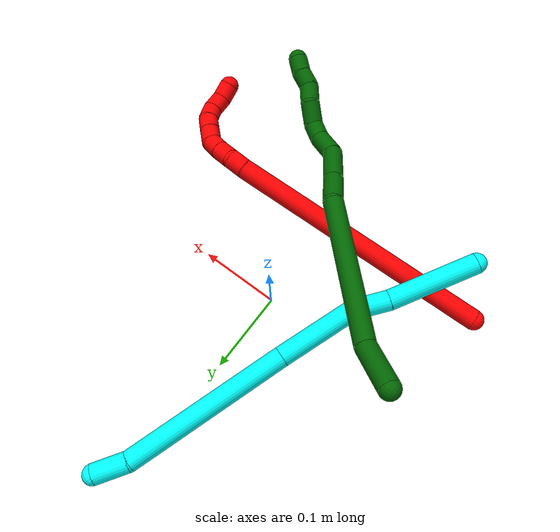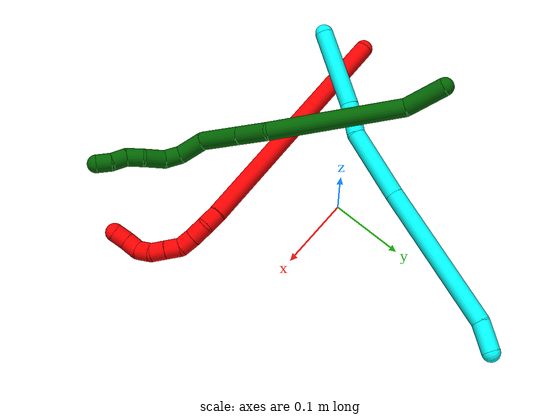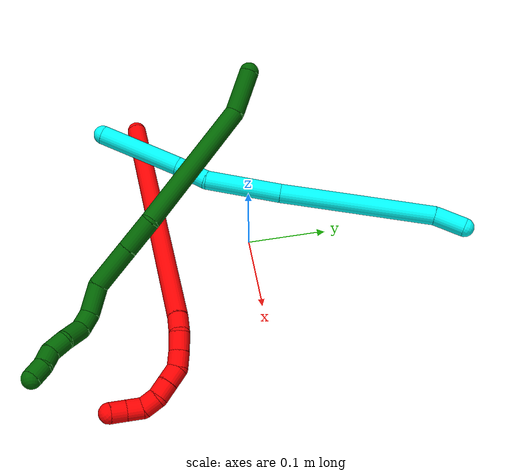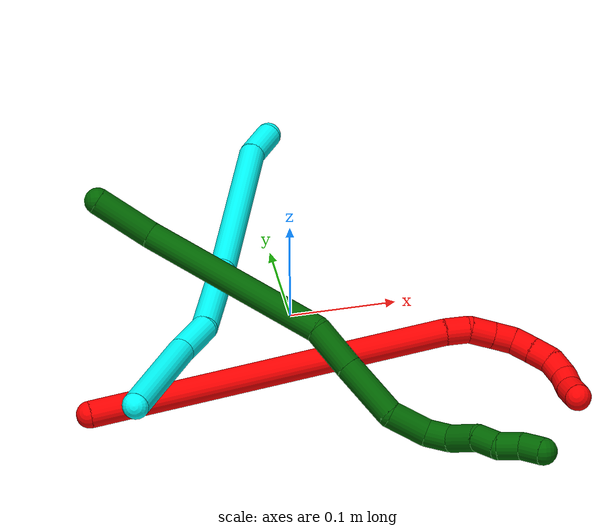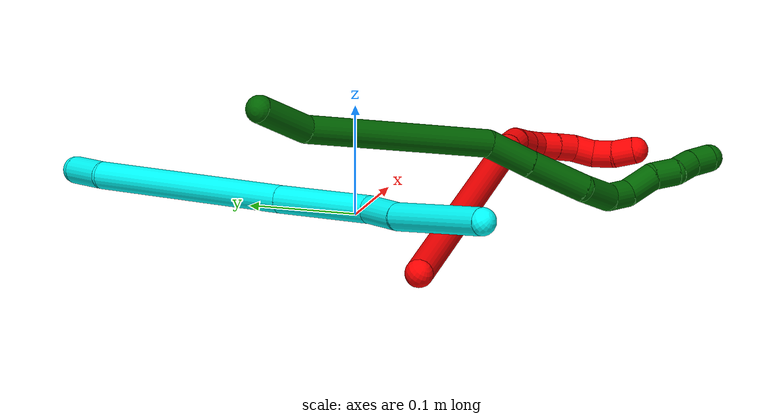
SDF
<sdf version="1.7">
 <world name="default">
  <model name="photoneo_s_sensor">
   <static>1</static>
   <pose>0 0 2 1.57079 1.57079 3.14159</pose>
   <link name="link">
    <inertial><mass>0.1</mass></inertial>
    <sensor name="sensor" type="depth">
     <update_rate>30</update_rate>
     <camera>
      <horizontal_fov>1.22</horizontal_fov>
      <image><width>1920</width><height>1200</height><format>B8G8R8</format></image>
      <clip><near>0.1</near><far>4</far></clip>
      <depth_camera><output>points</output></depth_camera>
     </camera>
     <plugin name="camera_plugin" filename="libgazebo_ros_depth_camera.so">
      <baseline>0.2</baseline>
      <alwaysOn>1</alwaysOn>
      <updateRate>0.0</updateRate>
      <cameraName>camera_ir</cameraName>
      <imageTopicName>/camera/color/image_raw</imageTopicName>
      <cameraInfoTopicName>/camera/color/camera_info</cameraInfoTopicName>
      <depthImageTopicName>/camera/depth/image_raw</depthImageTopicName>
      <depthImageCameraInfoTopicName>/camera/depth/camera_info</depthImageCameraInfoTopicName>
      <pointCloudTopicName>/camera/depth/points</pointCloudTopicName>
      <frameName>fr_optical</frameName>
      <pointCloudCutoff>0.1</pointCloudCutoff>
      <pointCloudCutoffMax>2.0</pointCloudCutoffMax>
      <distortionK1>0</distortionK1>
      <distortionK2>0</distortionK2>
      <distortionK3>0</distortionK3>
      <distortionT1>0</distortionT1>
      <distortionT2>0</distortionT2>
      <CxPrime>0</CxPrime>
      <Cx>0</Cx>
      <Cy>0</Cy>
      <focalLength>0</focalLength>
      <hackBaseline>0</hackBaseline>
     </plugin>
    </sensor>
   </link>
  </model>
  <model name="bin">
   <static>1</static>
   <link name="bottom">
    <collision name="collision-bottom">
     <pose>0 0 -0.01 0 -0 0</pose>
     <geometry><box><size>0.8 0.6 0.02</size></box></geometry>
     <surface>
      <friction><ode><mu>100</mu><mu2>100</mu2></ode></friction>
      <contact><collide_bitmask>65535</collide_bitmask></contact>
     </surface>
    </collision>
   </link>
   <link name="west_wall">
    <collision name="collision-west_wall">
     <pose>-0.41 0 0.1 0 -0 0</pose>
     <geometry><box><size>0.02 0.6 0.2</size></box></geometry>
     <surface>
      <friction><ode><mu>100</mu><mu2>100</mu2></ode></friction>
      <contact><collide_bitmask>65535</collide_bitmask></contact>
     </surface>
    </collision>
   </link>
   <link name="east_wall">
    <collision name="collision-east_wall">
     <pose>0.41 0 0.1 0 -0 0</pose>
     <geometry><box><size>0.02 0.6 0.2</size></box></geometry>
     <surface>
      <friction><ode><mu>100</mu><mu2>100</mu2></ode></friction>
      <contact><collide_bitmask>65535</collide_bitmask></contact>
     </surface>
    </collision>
   </link>
   <link name="south_wall">
    <collision name="collision-south_wall">
     <pose>0 -0.31 0.1 0 -0 0</pose>
     <geometry><box><size>0.8 0.02 0.2</size></box></geometry>
     <surface>
      <friction><ode><mu>100</mu><mu2>100</mu2></ode></friction>
      <contact><collide_bitmask>65535</collide_bitmask></contact>
     </surface>
    </collision>
   </link>
   <link name="north_wall">
    <collision name="collision-north_wall">
     <pose>0 0.31 0.1 0 -0 0</pose>
     <geometry><box><size>0.8 0.02 0.2</size></box></geometry>
     <surface>
      <friction><ode><mu>100</mu><mu2>100</mu2></ode></friction>
      <contact><collide_bitmask>65535</collide_bitmask></contact>
     </surface>
    </collision>
   </link>
  </model>
  <model name="2">
   <static>0</static>
   <link name="2">
    <collision name="collision-cylinder-e_1_1_4">
     <pose>0.160064 0.027199 -0.039667 -2.54054 1.2789 -2.35192</pose>
     <geometry><cylinder><radius>0.0125</radius><length>0.334267</length></cylinder></geometry>
     <surface>
      <friction><ode><mu>1.16</mu><mu2>1.16</mu2><slip1>0</slip1><slip2>0</slip2></ode></friction>
      <contact><ode><kp>1e+06</kp><kd>1</kd><max_vel>0</max_vel><min_depth>0.001</min_depth></ode></contact>
     </surface>
    </collision>
    <visual name="visual-cylinder-e_1_1_4">
     <pose>0.160064 0.027199 -0.039667 -2.54054 1.2789 -2.35192</pose>
     <geometry><cylinder><radius>0.0125</radius><length>0.334267</length></cylinder></geometry>
     <material><ambient>1 0 0 1</ambient></material>
    </visual>
    <collision name="collision-cylinder-e_2_4_5">
     <pose>0.330928 0.054907 -0.081994 -2.95249 1.32513 -2.89969</pose>
     <geometry><cylinder><radius>0.0125</radius><length>0.022271</length></cylinder></geometry>
     <surface>
      <friction><ode><mu>1.16</mu><mu2>1.16</mu2><slip1>0</slip1><slip2>0</slip2></ode></friction>
      <contact><ode><kp>1e+06</kp><kd>1</kd><max_vel>0</max_vel><min_depth>0.001</min_depth></ode></contact>
     </surface>
    </collision>
    <visual name="visual-cylinder-e_2_4_5">
     <pose>0.330928 0.054907 -0.081994 -2.95249 1.32513 -2.89969</pose>
     <geometry><cylinder><radius>0.0125</radius><length>0.022271</length></cylinder></geometry>
     <material><ambient>1 0 0 1</ambient></material>
    </visual>
    <collision name="collision-cylinder-e_3_5_6">
     <pose>0.351776 0.052471 -0.089406 2.58684 1.06302 2.23964</pose>
     <geometry><cylinder><radius>0.0125</radius><length>0.022994</length></cylinder></geometry>
     <surface>
      <friction><ode><mu>1.16</mu><mu2>1.16</mu2><slip1>0</slip1><slip2>0</slip2></ode></friction>
      <contact><ode><kp>1e+06</kp><kd>1</kd><max_vel>0</max_vel><min_depth>0.001</min_depth></ode></contact>
     </surface>
    </collision>
    <visual name="visual-cylinder-e_3_5_6">
     <pose>0.351776 0.052471 -0.089406 2.58684 1.06302 2.23964</pose>
     <geometry><cylinder><radius>0.0125</radius><length>0.022994</length></cylinder></geometry>
     <material><ambient>1 0 0 1</ambient></material>
    </visual>
    <collision name="collision-cylinder-e_4_6_7">
     <pose>0.370817 0.046605 -0.097511 2.42489 1.11162 2.05639</pose>
     <geometry><cylinder><radius>0.0125</radius><length>0.020069</length></cylinder></geometry>
     <surface>
      <friction><ode><mu>1.16</mu><mu2>1.16</mu2><slip1>0</slip1><slip2>0</slip2></ode></friction>
      <contact><ode><kp>1e+06</kp><kd>1</kd><max_vel>0</max_vel><min_depth>0.001</min_depth></ode></contact>
     </surface>
    </collision>
    <visual name="visual-cylinder-e_4_6_7">
     <pose>0.370817 0.046605 -0.097511 2.42489 1.11162 2.05639</pose>
     <geometry><cylinder><radius>0.0125</radius><length>0.020069</length></cylinder></geometry>
     <material><ambient>1 0 0 1</ambient></material>
    </visual>
    <collision name="collision-cylinder-e_5_7_8">
     <pose>0.388065 0.037784 -0.100328 1.48013 0.948215 0.876437</pose>
     <geometry><cylinder><radius>0.0125</radius><length>0.020316</length></cylinder></geometry>
     <surface>
      <friction><ode><mu>1.16</mu><mu2>1.16</mu2><slip1>0</slip1><slip2>0</slip2></ode></friction>
      <contact><ode><kp>1e+06</kp><kd>1</kd><max_vel>0</max_vel><min_depth>0.001</min_depth></ode></contact>
     </surface>
    </collision>
    <visual name="visual-cylinder-e_5_7_8">
     <pose>0.388065 0.037784 -0.100328 1.48013 0.948215 0.876437</pose>
     <geometry><cylinder><radius>0.0125</radius><length>0.020316</length></cylinder></geometry>
     <material><ambient>1 0 0 1</ambient></material>
    </visual>
    <collision name="collision-cylinder-e_6_8_9">
     <pose>0.404332 0.025901 -0.099403 1.50596 0.928423 0.87749</pose>
     <geometry><cylinder><radius>0.0125</radius><length>0.020021</length></cylinder></geometry>
     <surface>
      <friction><ode><mu>1.16</mu><mu2>1.16</mu2><slip1>0</slip1><slip2>0</slip2></ode></friction>
      <contact><ode><kp>1e+06</kp><kd>1</kd><max_vel>0</max_vel><min_depth>0.001</min_depth></ode></contact>
     </surface>
    </collision>
    <visual name="visual-cylinder-e_6_8_9">
     <pose>0.404332 0.025901 -0.099403 1.50596 0.928423 0.87749</pose>
     <geometry><cylinder><radius>0.0125</radius><length>0.020021</length></cylinder></geometry>
     <material><ambient>1 0 0 1</ambient></material>
    </visual>
    <collision name="collision-cylinder-e_7_9_10">
     <pose>0.417463 0.011496 -0.097259 1.36526 0.536609 0.439823</pose>
     <geometry><cylinder><radius>0.0125</radius><length>0.020015</length></cylinder></geometry>
     <surface>
      <friction><ode><mu>1.16</mu><mu2>1.16</mu2><slip1>0</slip1><slip2>0</slip2></ode></friction>
      <contact><ode><kp>1e+06</kp><kd>1</kd><max_vel>0</max_vel><min_depth>0.001</min_depth></ode></contact>
     </surface>
    </collision>
    <visual name="visual-cylinder-e_7_9_10">
     <pose>0.417463 0.011496 -0.097259 1.36526 0.536609 0.439823</pose>
     <geometry><cylinder><radius>0.0125</radius><length>0.020015</length></cylinder></geometry>
     <material><ambient>1 0 0 1</ambient></material>
    </visual>
    <collision name="collision-cylinder-e_8_10_11">
     <pose>0.425026 -0.00452 -0.089448 0.897745 0.246744 0.119313</pose>
     <geometry><cylinder><radius>0.0125</radius><length>0.020035</length></cylinder></geometry>
     <surface>
      <friction><ode><mu>1.16</mu><mu2>1.16</mu2><slip1>0</slip1><slip2>0</slip2></ode></friction>
      <contact><ode><kp>1e+06</kp><kd>1</kd><max_vel>0</max_vel><min_depth>0.001</min_depth></ode></contact>
     </surface>
    </collision>
    <visual name="visual-cylinder-e_8_10_11">
     <pose>0.425026 -0.00452 -0.089448 0.897745 0.246744 0.119313</pose>
     <geometry><cylinder><radius>0.0125</radius><length>0.020035</length></cylinder></geometry>
     <material><ambient>1 0 0 1</ambient></material>
    </visual>
    <collision name="collision-cylinder-e_9_11_2">
     <pose>0.431206 -0.018155 -0.076342 0.708285 0.382293 0.142849</pose>
     <geometry><cylinder><radius>0.0125</radius><length>0.020011</length></cylinder></geometry>
     <surface>
      <friction><ode><mu>1.16</mu><mu2>1.16</mu2><slip1>0</slip1><slip2>0</slip2></ode></friction>
      <contact><ode><kp>1e+06</kp><kd>1</kd><max_vel>0</max_vel><min_depth>0.001</min_depth></ode></contact>
     </surface>
    </collision>
    <visual name="visual-cylinder-e_9_11_2">
     <pose>0.431206 -0.018155 -0.076342 0.708285 0.382293 0.142849</pose>
     <geometry><cylinder><radius>0.0125</radius><length>0.020011</length></cylinder></geometry>
     <material><ambient>1 0 0 1</ambient></material>
    </visual>
    <collision name="collision-sphere-2">
     <pose>0.434938 -0.024194 -0.069291 0 -0 0</pose>
     <geometry><sphere><radius>0.0125</radius></sphere></geometry>
     <surface>
      <friction><ode><mu>1.16</mu><mu2>1.16</mu2><slip1>0</slip1><slip2>0</slip2></ode></friction>
      <contact><ode><kp>1e+06</kp><kd>1</kd><max_vel>0</max_vel><min_depth>0.001</min_depth></ode></contact>
     </surface>
    </collision>
    <visual name="visual-sphere-2">
     <pose>0.434938 -0.024194 -0.069291 0 -0 0</pose>
     <geometry><sphere><radius>0.0125</radius></sphere></geometry>
     <material><ambient>1 0 0 1</ambient></material>
    </visual>
    <collision name="collision-sphere-11">
     <pose>0.427473 -0.012116 -0.083392 0 -0 0</pose>
     <geometry><sphere><radius>0.0125</radius></sphere></geometry>
     <surface>
      <friction><ode><mu>1.16</mu><mu2>1.16</mu2><slip1>0</slip1><slip2>0</slip2></ode></friction>
      <contact><ode><kp>1e+06</kp><kd>1</kd><max_vel>0</max_vel><min_depth>0.001</min_depth></ode></contact>
     </surface>
    </collision>
    <visual name="visual-sphere-11">
     <pose>0.427473 -0.012116 -0.083392 0 -0 0</pose>
     <geometry><sphere><radius>0.0125</radius></sphere></geometry>
     <material><ambient>1 0 0 1</ambient></material>
    </visual>
    <collision name="collision-sphere-10">
     <pose>0.422579 0.003076 -0.095504 0 -0 0</pose>
     <geometry><sphere><radius>0.0125</radius></sphere></geometry>
     <surface>
      <friction><ode><mu>1.16</mu><mu2>1.16</mu2><slip1>0</slip1><slip2>0</slip2></ode></friction>
      <contact><ode><kp>1e+06</kp><kd>1</kd><max_vel>0</max_vel><min_depth>0.001</min_depth></ode></contact>
     </surface>
    </collision>
    <visual name="visual-sphere-10">
     <pose>0.422579 0.003076 -0.095504 0 -0 0</pose>
     <geometry><sphere><radius>0.0125</radius></sphere></geometry>
     <material><ambient>1 0 0 1</ambient></material>
    </visual>
    <collision name="collision-sphere-9">
     <pose>0.412347 0.019916 -0.099014 0 -0 0</pose>
     <geometry><sphere><radius>0.0125</radius></sphere></geometry>
     <surface>
      <friction><ode><mu>1.16</mu><mu2>1.16</mu2><slip1>0</slip1><slip2>0</slip2></ode></friction>
      <contact><ode><kp>1e+06</kp><kd>1</kd><max_vel>0</max_vel><min_depth>0.001</min_depth></ode></contact>
     </surface>
    </collision>
    <visual name="visual-sphere-9">
     <pose>0.412347 0.019916 -0.099014 0 -0 0</pose>
     <geometry><sphere><radius>0.0125</radius></sphere></geometry>
     <material><ambient>1 0 0 1</ambient></material>
    </visual>
    <collision name="collision-sphere-4">
     <pose>0.320127 0.054398 -0.079334 0 -0 0</pose>
     <geometry><sphere><radius>0.0125</radius></sphere></geometry>
     <surface>
      <friction><ode><mu>1.16</mu><mu2>1.16</mu2><slip1>0</slip1><slip2>0</slip2></ode></friction>
      <contact><ode><kp>1e+06</kp><kd>1</kd><max_vel>0</max_vel><min_depth>0.001</min_depth></ode></contact>
     </surface>
    </collision>
    <visual name="visual-sphere-4">
     <pose>0.320127 0.054398 -0.079334 0 -0 0</pose>
     <geometry><sphere><radius>0.0125</radius></sphere></geometry>
     <material><ambient>1 0 0 1</ambient></material>
    </visual>
    <collision name="collision-sphere-1">
     <geometry><sphere><radius>0.0125</radius></sphere></geometry>
     <surface>
      <friction><ode><mu>1.16</mu><mu2>1.16</mu2><slip1>0</slip1><slip2>0</slip2></ode></friction>
      <contact><ode><kp>1e+06</kp><kd>1</kd><max_vel>0</max_vel><min_depth>0.001</min_depth></ode></contact>
     </surface>
    </collision>
    <visual name="visual-sphere-1">
     <geometry><sphere><radius>0.0125</radius></sphere></geometry>
     <material><ambient>1 0 0 1</ambient></material>
    </visual>
    <collision name="collision-sphere-8">
     <pose>0.396317 0.031885 -0.099791 0 -0 0</pose>
     <geometry><sphere><radius>0.0125</radius></sphere></geometry>
     <surface>
      <friction><ode><mu>1.16</mu><mu2>1.16</mu2><slip1>0</slip1><slip2>0</slip2></ode></friction>
      <contact><ode><kp>1e+06</kp><kd>1</kd><max_vel>0</max_vel><min_depth>0.001</min_depth></ode></contact>
     </surface>
    </collision>
    <visual name="visual-sphere-8">
     <pose>0.396317 0.031885 -0.099791 0 -0 0</pose>
     <geometry><sphere><radius>0.0125</radius></sphere></geometry>
     <material><ambient>1 0 0 1</ambient></material>
    </visual>
    <collision name="collision-sphere-5">
     <pose>0.34173 0.055416 -0.084654 0 -0 0</pose>
     <geometry><sphere><radius>0.0125</radius></sphere></geometry>
     <surface>
      <friction><ode><mu>1.16</mu><mu2>1.16</mu2><slip1>0</slip1><slip2>0</slip2></ode></friction>
      <contact><ode><kp>1e+06</kp><kd>1</kd><max_vel>0</max_vel><min_depth>0.001</min_depth></ode></contact>
     </surface>
    </collision>
    <visual name="visual-sphere-5">
     <pose>0.34173 0.055416 -0.084654 0 -0 0</pose>
     <geometry><sphere><radius>0.0125</radius></sphere></geometry>
     <material><ambient>1 0 0 1</ambient></material>
    </visual>
    <collision name="collision-sphere-6">
     <pose>0.361822 0.049527 -0.094158 0 -0 0</pose>
     <geometry><sphere><radius>0.0125</radius></sphere></geometry>
     <surface>
      <friction><ode><mu>1.16</mu><mu2>1.16</mu2><slip1>0</slip1><slip2>0</slip2></ode></friction>
      <contact><ode><kp>1e+06</kp><kd>1</kd><max_vel>0</max_vel><min_depth>0.001</min_depth></ode></contact>
     </surface>
    </collision>
    <visual name="visual-sphere-6">
     <pose>0.361822 0.049527 -0.094158 0 -0 0</pose>
     <geometry><sphere><radius>0.0125</radius></sphere></geometry>
     <material><ambient>1 0 0 1</ambient></material>
    </visual>
    <collision name="collision-sphere-7">
     <pose>0.379813 0.043684 -0.100864 0 -0 0</pose>
     <geometry><sphere><radius>0.0125</radius></sphere></geometry>
     <surface>
      <friction><ode><mu>1.16</mu><mu2>1.16</mu2><slip1>0</slip1><slip2>0</slip2></ode></friction>
      <contact><ode><kp>1e+06</kp><kd>1</kd><max_vel>0</max_vel><min_depth>0.001</min_depth></ode></contact>
     </surface>
    </collision>
    <visual name="visual-sphere-7">
     <pose>0.379813 0.043684 -0.100864 0 -0 0</pose>
     <geometry><sphere><radius>0.0125</radius></sphere></geometry>
     <material><ambient>1 0 0 1</ambient></material>
    </visual>
    <inertial>
     <pose>0.235768 0.027037 -0.056786 0 -0 0</pose>
     <mass>0.5</mass>
     <inertia>
      <ixx>-0.001231</ixx>
      <ixy>0</ixy>
      <ixz>0</ixz>
      <iyy>0.002389</iyy>
      <iyz>0</iyz>
      <izz>-0.00351</izz>
     </inertia>
    </inertial>
   </link>
   <pose>-0.209514 -0.123667 0.011495 0.675122 -0.1768 -0.228906</pose>
  </model>
  <model name="3">
   <static>0</static>
   <link name="3">
    <collision name="collision-cylinder-e_1_1_4">
     <pose>0.001281 0.025394 0.048931 -0.478716 0.023225 -0.005668</pose>
     <geometry><cylinder><radius>0.0125</radius><length>0.110286</length></cylinder></geometry>
     <surface>
      <friction><ode><mu>1.16</mu><mu2>1.16</mu2><slip1>0</slip1><slip2>0</slip2></ode></friction>
      <contact><ode><kp>1e+06</kp><kd>1</kd><max_vel>0</max_vel><min_depth>0.001</min_depth></ode></contact>
     </surface>
    </collision>
    <visual name="visual-cylinder-e_1_1_4">
     <pose>0.001281 0.025394 0.048931 -0.478716 0.023225 -0.005668</pose>
     <geometry><cylinder><radius>0.0125</radius><length>0.110286</length></cylinder></geometry>
     <material><ambient>0.003922 1 0.996078 1</ambient></material>
    </visual>
    <collision name="collision-cylinder-e_2_4_5">
     <pose>0.001535 0.063502 0.115909 -0.613726 -0.046438 0.014717</pose>
     <geometry><cylinder><radius>0.0125</radius><length>0.044199</length></cylinder></geometry>
     <surface>
      <friction><ode><mu>1.16</mu><mu2>1.16</mu2><slip1>0</slip1><slip2>0</slip2></ode></friction>
      <contact><ode><kp>1e+06</kp><kd>1</kd><max_vel>0</max_vel><min_depth>0.001</min_depth></ode></contact>
     </surface>
    </collision>
    <visual name="visual-cylinder-e_2_4_5">
     <pose>0.001535 0.063502 0.115909 -0.613726 -0.046438 0.014717</pose>
     <geometry><cylinder><radius>0.0125</radius><length>0.044199</length></cylinder></geometry>
     <material><ambient>0.003922 1 0.996078 1</ambient></material>
    </visual>
    <collision name="collision-cylinder-e_3_5_6">
     <pose>0.012571 0.097714 0.177426 -0.459284 0.243779 -0.057255</pose>
     <geometry><cylinder><radius>0.0125</radius><length>0.099946</length></cylinder></geometry>
     <surface>
      <friction><ode><mu>1.16</mu><mu2>1.16</mu2><slip1>0</slip1><slip2>0</slip2></ode></friction>
      <contact><ode><kp>1e+06</kp><kd>1</kd><max_vel>0</max_vel><min_depth>0.001</min_depth></ode></contact>
     </surface>
    </collision>
    <visual name="visual-cylinder-e_3_5_6">
     <pose>0.012571 0.097714 0.177426 -0.459284 0.243779 -0.057255</pose>
     <geometry><cylinder><radius>0.0125</radius><length>0.099946</length></cylinder></geometry>
     <material><ambient>0.003922 1 0.996078 1</ambient></material>
    </visual>
    <collision name="collision-cylinder-e_4_6_7">
     <pose>0.052576 0.163453 0.308596 -0.467201 0.277147 -0.066347</pose>
     <geometry><cylinder><radius>0.0125</radius><length>0.204247</length></cylinder></geometry>
     <surface>
      <friction><ode><mu>1.16</mu><mu2>1.16</mu2><slip1>0</slip1><slip2>0</slip2></ode></friction>
      <contact><ode><kp>1e+06</kp><kd>1</kd><max_vel>0</max_vel><min_depth>0.001</min_depth></ode></contact>
     </surface>
    </collision>
    <visual name="visual-cylinder-e_4_6_7">
     <pose>0.052576 0.163453 0.308596 -0.467201 0.277147 -0.066347</pose>
     <geometry><cylinder><radius>0.0125</radius><length>0.204247</length></cylinder></geometry>
     <material><ambient>0.003922 1 0.996078 1</ambient></material>
    </visual>
    <collision name="collision-cylinder-e_5_7_2">
     <pose>0.081054 0.218838 0.413684 -0.569989 0.025924 -0.007595</pose>
     <geometry><cylinder><radius>0.0125</radius><length>0.041321</length></cylinder></geometry>
     <surface>
      <friction><ode><mu>1.16</mu><mu2>1.16</mu2><slip1>0</slip1><slip2>0</slip2></ode></friction>
      <contact><ode><kp>1e+06</kp><kd>1</kd><max_vel>0</max_vel><min_depth>0.001</min_depth></ode></contact>
     </surface>
    </collision>
    <visual name="visual-cylinder-e_5_7_2">
     <pose>0.081054 0.218838 0.413684 -0.569989 0.025924 -0.007595</pose>
     <geometry><cylinder><radius>0.0125</radius><length>0.041321</length></cylinder></geometry>
     <material><ambient>0.003922 1 0.996078 1</ambient></material>
    </visual>
    <collision name="collision-sphere-2">
     <pose>0.081589 0.229984 0.431073 0 -0 0</pose>
     <geometry><sphere><radius>0.0125</radius></sphere></geometry>
     <surface>
      <friction><ode><mu>1.16</mu><mu2>1.16</mu2><slip1>0</slip1><slip2>0</slip2></ode></friction>
      <contact><ode><kp>1e+06</kp><kd>1</kd><max_vel>0</max_vel><min_depth>0.001</min_depth></ode></contact>
     </surface>
    </collision>
    <visual name="visual-sphere-2">
     <pose>0.081589 0.229984 0.431073 0 -0 0</pose>
     <geometry><sphere><radius>0.0125</radius></sphere></geometry>
     <material><ambient>0.003922 1 0.996078 1</ambient></material>
    </visual>
    <collision name="collision-sphere-7">
     <pose>0.080518 0.207693 0.396296 0 -0 0</pose>
     <geometry><sphere><radius>0.0125</radius></sphere></geometry>
     <surface>
      <friction><ode><mu>1.16</mu><mu2>1.16</mu2><slip1>0</slip1><slip2>0</slip2></ode></friction>
      <contact><ode><kp>1e+06</kp><kd>1</kd><max_vel>0</max_vel><min_depth>0.001</min_depth></ode></contact>
     </surface>
    </collision>
    <visual name="visual-sphere-7">
     <pose>0.080518 0.207693 0.396296 0 -0 0</pose>
     <geometry><sphere><radius>0.0125</radius></sphere></geometry>
     <material><ambient>0.003922 1 0.996078 1</ambient></material>
    </visual>
    <collision name="collision-sphere-6">
     <pose>0.024633 0.119213 0.220896 0 -0 0</pose>
     <geometry><sphere><radius>0.0125</radius></sphere></geometry>
     <surface>
      <friction><ode><mu>1.16</mu><mu2>1.16</mu2><slip1>0</slip1><slip2>0</slip2></ode></friction>
      <contact><ode><kp>1e+06</kp><kd>1</kd><max_vel>0</max_vel><min_depth>0.001</min_depth></ode></contact>
     </surface>
    </collision>
    <visual name="visual-sphere-6">
     <pose>0.024633 0.119213 0.220896 0 -0 0</pose>
     <geometry><sphere><radius>0.0125</radius></sphere></geometry>
     <material><ambient>0.003922 1 0.996078 1</ambient></material>
    </visual>
    <collision name="collision-sphere-5">
     <pose>0.000509 0.076216 0.133957 0 -0 0</pose>
     <geometry><sphere><radius>0.0125</radius></sphere></geometry>
     <surface>
      <friction><ode><mu>1.16</mu><mu2>1.16</mu2><slip1>0</slip1><slip2>0</slip2></ode></friction>
      <contact><ode><kp>1e+06</kp><kd>1</kd><max_vel>0</max_vel><min_depth>0.001</min_depth></ode></contact>
     </surface>
    </collision>
    <visual name="visual-sphere-5">
     <pose>0.000509 0.076216 0.133957 0 -0 0</pose>
     <geometry><sphere><radius>0.0125</radius></sphere></geometry>
     <material><ambient>0.003922 1 0.996078 1</ambient></material>
    </visual>
    <collision name="collision-sphere-1">
     <geometry><sphere><radius>0.0125</radius></sphere></geometry>
     <surface>
      <friction><ode><mu>1.16</mu><mu2>1.16</mu2><slip1>0</slip1><slip2>0</slip2></ode></friction>
      <contact><ode><kp>1e+06</kp><kd>1</kd><max_vel>0</max_vel><min_depth>0.001</min_depth></ode></contact>
     </surface>
    </collision>
    <visual name="visual-sphere-1">
     <geometry><sphere><radius>0.0125</radius></sphere></geometry>
     <material><ambient>0.003922 1 0.996078 1</ambient></material>
    </visual>
    <collision name="collision-sphere-4">
     <pose>0.002561 0.050789 0.097862 0 -0 0</pose>
     <geometry><sphere><radius>0.0125</radius></sphere></geometry>
     <surface>
      <friction><ode><mu>1.16</mu><mu2>1.16</mu2><slip1>0</slip1><slip2>0</slip2></ode></friction>
      <contact><ode><kp>1e+06</kp><kd>1</kd><max_vel>0</max_vel><min_depth>0.001</min_depth></ode></contact>
     </surface>
    </collision>
    <visual name="visual-sphere-4">
     <pose>0.002561 0.050789 0.097862 0 -0 0</pose>
     <geometry><sphere><radius>0.0125</radius></sphere></geometry>
     <material><ambient>0.003922 1 0.996078 1</ambient></material>
    </visual>
    <inertial>
     <pose>0.031107 0.115602 0.216753 0 -0 0</pose>
     <mass>0.5</mass>
     <inertia>
      <ixx>0.000861</ixx>
      <ixy>0</ixy>
      <ixz>0</ixz>
      <iyy>0.000807</iyy>
      <iyz>0</iyz>
      <izz>-0.000597</izz>
     </inertia>
    </inertial>
   </link>
   <pose>-0.174009 -0.168888 0.051253 2.2451 -0.497046 2.47387</pose>
  </model>
  <model name="6">
   <static>0</static>
   <link name="6">
    <collision name="collision-cylinder-e_1_1_4">
     <pose>0.009574 -0.014535 -0.022976 2.57756 0.33859 1.06598</pose>
     <geometry><cylinder><radius>0.0125</radius><length>0.057649</length></cylinder></geometry>
     <surface>
      <friction><ode><mu>1.16</mu><mu2>1.16</mu2><slip1>0</slip1><slip2>0</slip2></ode></friction>
      <contact><ode><kp>1e+06</kp><kd>1</kd><max_vel>0</max_vel><min_depth>0.001</min_depth></ode></contact>
     </surface>
    </collision>
    <visual name="visual-cylinder-e_1_1_4">
     <pose>0.009574 -0.014535 -0.022976 2.57756 0.33859 1.06598</pose>
     <geometry><cylinder><radius>0.0125</radius><length>0.057649</length></cylinder></geometry>
     <material><ambient>0 0.392157 0.003922 1</ambient></material>
    </visual>
    <collision name="collision-cylinder-e_2_4_5">
     <pose>0.076182 -0.057494 -0.112889 2.74001 0.665081 2.07653</pose>
     <geometry><cylinder><radius>0.0125</radius><length>0.184837</length></cylinder></geometry>
     <surface>
      <friction><ode><mu>1.16</mu><mu2>1.16</mu2><slip1>0</slip1><slip2>0</slip2></ode></friction>
      <contact><ode><kp>1e+06</kp><kd>1</kd><max_vel>0</max_vel><min_depth>0.001</min_depth></ode></contact>
     </surface>
    </collision>
    <visual name="visual-cylinder-e_2_4_5">
     <pose>0.076182 -0.057494 -0.112889 2.74001 0.665081 2.07653</pose>
     <geometry><cylinder><radius>0.0125</radius><length>0.184837</length></cylinder></geometry>
     <material><ambient>0 0.392157 0.003922 1</ambient></material>
    </visual>
    <collision name="collision-cylinder-e_3_5_6">
     <pose>0.146083 -0.099615 -0.191554 2.27898 0.619792 1.21581</pose>
     <geometry><cylinder><radius>0.0125</radius><length>0.044305</length></cylinder></geometry>
     <surface>
      <friction><ode><mu>1.16</mu><mu2>1.16</mu2><slip1>0</slip1><slip2>0</slip2></ode></friction>
      <contact><ode><kp>1e+06</kp><kd>1</kd><max_vel>0</max_vel><min_depth>0.001</min_depth></ode></contact>
     </surface>
    </collision>
    <visual name="visual-cylinder-e_3_5_6">
     <pose>0.146083 -0.099615 -0.191554 2.27898 0.619792 1.21581</pose>
     <geometry><cylinder><radius>0.0125</radius><length>0.044305</length></cylinder></geometry>
     <material><ambient>0 0.392157 0.003922 1</ambient></material>
    </visual>
    <collision name="collision-cylinder-e_4_6_7">
     <pose>0.175883 -0.13046 -0.219118 2.31638 0.627562 1.27585</pose>
     <geometry><cylinder><radius>0.0125</radius><length>0.057674</length></cylinder></geometry>
     <surface>
      <friction><ode><mu>1.16</mu><mu2>1.16</mu2><slip1>0</slip1><slip2>0</slip2></ode></friction>
      <contact><ode><kp>1e+06</kp><kd>1</kd><max_vel>0</max_vel><min_depth>0.001</min_depth></ode></contact>
     </surface>
    </collision>
    <visual name="visual-cylinder-e_4_6_7">
     <pose>0.175883 -0.13046 -0.219118 2.31638 0.627562 1.27585</pose>
     <geometry><cylinder><radius>0.0125</radius><length>0.057674</length></cylinder></geometry>
     <material><ambient>0 0.392157 0.003922 1</ambient></material>
    </visual>
    <collision name="collision-cylinder-e_5_7_8">
     <pose>0.198165 -0.155725 -0.25085 2.66956 0.291229 1.09517</pose>
     <geometry><cylinder><radius>0.0125</radius><length>0.037266</length></cylinder></geometry>
     <surface>
      <friction><ode><mu>1.16</mu><mu2>1.16</mu2><slip1>0</slip1><slip2>0</slip2></ode></friction>
      <contact><ode><kp>1e+06</kp><kd>1</kd><max_vel>0</max_vel><min_depth>0.001</min_depth></ode></contact>
     </surface>
    </collision>
    <visual name="visual-cylinder-e_5_7_8">
     <pose>0.198165 -0.155725 -0.25085 2.66956 0.291229 1.09517</pose>
     <geometry><cylinder><radius>0.0125</radius><length>0.037266</length></cylinder></geometry>
     <material><ambient>0 0.392157 0.003922 1</ambient></material>
    </visual>
    <collision name="collision-cylinder-e_6_8_9">
     <pose>0.209376 -0.164771 -0.276455 3.04607 0.541087 2.80025</pose>
     <geometry><cylinder><radius>0.0125</radius><length>0.022756</length></cylinder></geometry>
     <surface>
      <friction><ode><mu>1.16</mu><mu2>1.16</mu2><slip1>0</slip1><slip2>0</slip2></ode></friction>
      <contact><ode><kp>1e+06</kp><kd>1</kd><max_vel>0</max_vel><min_depth>0.001</min_depth></ode></contact>
     </surface>
    </collision>
    <visual name="visual-cylinder-e_6_8_9">
     <pose>0.209376 -0.164771 -0.276455 3.04607 0.541087 2.80025</pose>
     <geometry><cylinder><radius>0.0125</radius><length>0.022756</length></cylinder></geometry>
     <material><ambient>0 0.392157 0.003922 1</ambient></material>
    </visual>
    <collision name="collision-cylinder-e_7_9_10">
     <pose>0.225773 -0.161486 -0.29583 -2.73039 0.784981 -2.20826</pose>
     <geometry><cylinder><radius>0.0125</radius><length>0.029814</length></cylinder></geometry>
     <surface>
      <friction><ode><mu>1.16</mu><mu2>1.16</mu2><slip1>0</slip1><slip2>0</slip2></ode></friction>
      <contact><ode><kp>1e+06</kp><kd>1</kd><max_vel>0</max_vel><min_depth>0.001</min_depth></ode></contact>
     </surface>
    </collision>
    <visual name="visual-cylinder-e_7_9_10">
     <pose>0.225773 -0.161486 -0.29583 -2.73039 0.784981 -2.20826</pose>
     <geometry><cylinder><radius>0.0125</radius><length>0.029814</length></cylinder></geometry>
     <material><ambient>0 0.392157 0.003922 1</ambient></material>
    </visual>
    <collision name="collision-cylinder-e_8_10_11">
     <pose>0.24523 -0.158033 -0.313033 3.04093 0.866758 2.92472</pose>
     <geometry><cylinder><radius>0.0125</radius><length>0.023408</length></cylinder></geometry>
     <surface>
      <friction><ode><mu>1.16</mu><mu2>1.16</mu2><slip1>0</slip1><slip2>0</slip2></ode></friction>
      <contact><ode><kp>1e+06</kp><kd>1</kd><max_vel>0</max_vel><min_depth>0.001</min_depth></ode></contact>
     </surface>
    </collision>
    <visual name="visual-cylinder-e_8_10_11">
     <pose>0.24523 -0.158033 -0.313033 3.04093 0.866758 2.92472</pose>
     <geometry><cylinder><radius>0.0125</radius><length>0.023408</length></cylinder></geometry>
     <material><ambient>0 0.392157 0.003922 1</ambient></material>
    </visual>
    <collision name="collision-cylinder-e_9_11_12">
     <pose>0.258813 -0.157465 -0.330085 -3.0028 0.451718 -2.55409</pose>
     <geometry><cylinder><radius>0.0125</radius><length>0.021356</length></cylinder></geometry>
     <surface>
      <friction><ode><mu>1.16</mu><mu2>1.16</mu2><slip1>0</slip1><slip2>0</slip2></ode></friction>
      <contact><ode><kp>1e+06</kp><kd>1</kd><max_vel>0</max_vel><min_depth>0.001</min_depth></ode></contact>
     </surface>
    </collision>
    <visual name="visual-cylinder-e_9_11_12">
     <pose>0.258813 -0.157465 -0.330085 -3.0028 0.451718 -2.55409</pose>
     <geometry><cylinder><radius>0.0125</radius><length>0.021356</length></cylinder></geometry>
     <material><ambient>0 0.392157 0.003922 1</ambient></material>
    </visual>
    <collision name="collision-cylinder-e_10_12_2">
     <pose>0.270268 -0.156331 -0.347561 3.11706 0.706375 3.07506</pose>
     <geometry><cylinder><radius>0.0125</radius><length>0.020936</length></cylinder></geometry>
     <surface>
      <friction><ode><mu>1.16</mu><mu2>1.16</mu2><slip1>0</slip1><slip2>0</slip2></ode></friction>
      <contact><ode><kp>1e+06</kp><kd>1</kd><max_vel>0</max_vel><min_depth>0.001</min_depth></ode></contact>
     </surface>
    </collision>
    <visual name="visual-cylinder-e_10_12_2">
     <pose>0.270268 -0.156331 -0.347561 3.11706 0.706375 3.07506</pose>
     <geometry><cylinder><radius>0.0125</radius><length>0.020936</length></cylinder></geometry>
     <material><ambient>0 0.392157 0.003922 1</ambient></material>
    </visual>
    <collision name="collision-sphere-2">
     <pose>0.277063 -0.156526 -0.355521 0 -0 0</pose>
     <geometry><sphere><radius>0.0125</radius></sphere></geometry>
     <surface>
      <friction><ode><mu>1.16</mu><mu2>1.16</mu2><slip1>0</slip1><slip2>0</slip2></ode></friction>
      <contact><ode><kp>1e+06</kp><kd>1</kd><max_vel>0</max_vel><min_depth>0.001</min_depth></ode></contact>
     </surface>
    </collision>
    <visual name="visual-sphere-2">
     <pose>0.277063 -0.156526 -0.355521 0 -0 0</pose>
     <geometry><sphere><radius>0.0125</radius></sphere></geometry>
     <material><ambient>0 0.392157 0.003922 1</ambient></material>
    </visual>
    <collision name="collision-sphere-12">
     <pose>0.263474 -0.156136 -0.3396 0 -0 0</pose>
     <geometry><sphere><radius>0.0125</radius></sphere></geometry>
     <surface>
      <friction><ode><mu>1.16</mu><mu2>1.16</mu2><slip1>0</slip1><slip2>0</slip2></ode></friction>
      <contact><ode><kp>1e+06</kp><kd>1</kd><max_vel>0</max_vel><min_depth>0.001</min_depth></ode></contact>
     </surface>
    </collision>
    <visual name="visual-sphere-12">
     <pose>0.263474 -0.156136 -0.3396 0 -0 0</pose>
     <geometry><sphere><radius>0.0125</radius></sphere></geometry>
     <material><ambient>0 0.392157 0.003922 1</ambient></material>
    </visual>
    <collision name="collision-sphere-11">
     <pose>0.254152 -0.158794 -0.320571 0 -0 0</pose>
     <geometry><sphere><radius>0.0125</radius></sphere></geometry>
     <surface>
      <friction><ode><mu>1.16</mu><mu2>1.16</mu2><slip1>0</slip1><slip2>0</slip2></ode></friction>
      <contact><ode><kp>1e+06</kp><kd>1</kd><max_vel>0</max_vel><min_depth>0.001</min_depth></ode></contact>
     </surface>
    </collision>
    <visual name="visual-sphere-11">
     <pose>0.254152 -0.158794 -0.320571 0 -0 0</pose>
     <geometry><sphere><radius>0.0125</radius></sphere></geometry>
     <material><ambient>0 0.392157 0.003922 1</ambient></material>
    </visual>
    <collision name="collision-sphere-10">
     <pose>0.236309 -0.157271 -0.305496 0 -0 0</pose>
     <geometry><sphere><radius>0.0125</radius></sphere></geometry>
     <surface>
      <friction><ode><mu>1.16</mu><mu2>1.16</mu2><slip1>0</slip1><slip2>0</slip2></ode></friction>
      <contact><ode><kp>1e+06</kp><kd>1</kd><max_vel>0</max_vel><min_depth>0.001</min_depth></ode></contact>
     </surface>
    </collision>
    <visual name="visual-sphere-10">
     <pose>0.236309 -0.157271 -0.305496 0 -0 0</pose>
     <geometry><sphere><radius>0.0125</radius></sphere></geometry>
     <material><ambient>0 0.392157 0.003922 1</ambient></material>
    </visual>
    <collision name="collision-sphere-9">
     <pose>0.215237 -0.165701 -0.286164 0 -0 0</pose>
     <geometry><sphere><radius>0.0125</radius></sphere></geometry>
     <surface>
      <friction><ode><mu>1.16</mu><mu2>1.16</mu2><slip1>0</slip1><slip2>0</slip2></ode></friction>
      <contact><ode><kp>1e+06</kp><kd>1</kd><max_vel>0</max_vel><min_depth>0.001</min_depth></ode></contact>
     </surface>
    </collision>
    <visual name="visual-sphere-9">
     <pose>0.215237 -0.165701 -0.286164 0 -0 0</pose>
     <geometry><sphere><radius>0.0125</radius></sphere></geometry>
     <material><ambient>0 0.392157 0.003922 1</ambient></material>
    </visual>
    <collision name="collision-sphere-4">
     <pose>0.019148 -0.029069 -0.045953 0 -0 0</pose>
     <geometry><sphere><radius>0.0125</radius></sphere></geometry>
     <surface>
      <friction><ode><mu>1.16</mu><mu2>1.16</mu2><slip1>0</slip1><slip2>0</slip2></ode></friction>
      <contact><ode><kp>1e+06</kp><kd>1</kd><max_vel>0</max_vel><min_depth>0.001</min_depth></ode></contact>
     </surface>
    </collision>
    <visual name="visual-sphere-4">
     <pose>0.019148 -0.029069 -0.045953 0 -0 0</pose>
     <geometry><sphere><radius>0.0125</radius></sphere></geometry>
     <material><ambient>0 0.392157 0.003922 1</ambient></material>
    </visual>
    <collision name="collision-sphere-1">
     <geometry><sphere><radius>0.0125</radius></sphere></geometry>
     <surface>
      <friction><ode><mu>1.16</mu><mu2>1.16</mu2><slip1>0</slip1><slip2>0</slip2></ode></friction>
      <contact><ode><kp>1e+06</kp><kd>1</kd><max_vel>0</max_vel><min_depth>0.001</min_depth></ode></contact>
     </surface>
    </collision>
    <visual name="visual-sphere-1">
     <geometry><sphere><radius>0.0125</radius></sphere></geometry>
     <material><ambient>0 0.392157 0.003922 1</ambient></material>
    </visual>
    <collision name="collision-sphere-8">
     <pose>0.203516 -0.163841 -0.266747 0 -0 0</pose>
     <geometry><sphere><radius>0.0125</radius></sphere></geometry>
     <surface>
      <friction><ode><mu>1.16</mu><mu2>1.16</mu2><slip1>0</slip1><slip2>0</slip2></ode></friction>
      <contact><ode><kp>1e+06</kp><kd>1</kd><max_vel>0</max_vel><min_depth>0.001</min_depth></ode></contact>
     </surface>
    </collision>
    <visual name="visual-sphere-8">
     <pose>0.203516 -0.163841 -0.266747 0 -0 0</pose>
     <geometry><sphere><radius>0.0125</radius></sphere></geometry>
     <material><ambient>0 0.392157 0.003922 1</ambient></material>
    </visual>
    <collision name="collision-sphere-5">
     <pose>0.133216 -0.085918 -0.179825 0 -0 0</pose>
     <geometry><sphere><radius>0.0125</radius></sphere></geometry>
     <surface>
      <friction><ode><mu>1.16</mu><mu2>1.16</mu2><slip1>0</slip1><slip2>0</slip2></ode></friction>
      <contact><ode><kp>1e+06</kp><kd>1</kd><max_vel>0</max_vel><min_depth>0.001</min_depth></ode></contact>
     </surface>
    </collision>
    <visual name="visual-sphere-5">
     <pose>0.133216 -0.085918 -0.179825 0 -0 0</pose>
     <geometry><sphere><radius>0.0125</radius></sphere></geometry>
     <material><ambient>0 0.392157 0.003922 1</ambient></material>
    </visual>
    <collision name="collision-sphere-6">
     <pose>0.158951 -0.113311 -0.203283 0 -0 0</pose>
     <geometry><sphere><radius>0.0125</radius></sphere></geometry>
     <surface>
      <friction><ode><mu>1.16</mu><mu2>1.16</mu2><slip1>0</slip1><slip2>0</slip2></ode></friction>
      <contact><ode><kp>1e+06</kp><kd>1</kd><max_vel>0</max_vel><min_depth>0.001</min_depth></ode></contact>
     </surface>
    </collision>
    <visual name="visual-sphere-6">
     <pose>0.158951 -0.113311 -0.203283 0 -0 0</pose>
     <geometry><sphere><radius>0.0125</radius></sphere></geometry>
     <material><ambient>0 0.392157 0.003922 1</ambient></material>
    </visual>
    <collision name="collision-sphere-7">
     <pose>0.192815 -0.14761 -0.234953 0 -0 0</pose>
     <geometry><sphere><radius>0.0125</radius></sphere></geometry>
     <surface>
      <friction><ode><mu>1.16</mu><mu2>1.16</mu2><slip1>0</slip1><slip2>0</slip2></ode></friction>
      <contact><ode><kp>1e+06</kp><kd>1</kd><max_vel>0</max_vel><min_depth>0.001</min_depth></ode></contact>
     </surface>
    </collision>
    <visual name="visual-sphere-7">
     <pose>0.192815 -0.14761 -0.234953 0 -0 0</pose>
     <geometry><sphere><radius>0.0125</radius></sphere></geometry>
     <material><ambient>0 0.392157 0.003922 1</ambient></material>
    </visual>
    <inertial>
     <pose>0.134111 -0.096209 -0.178854 0 -0 0</pose>
     <mass>0.5</mass>
     <inertia>
      <ixx>0.000236</ixx>
      <ixy>0</ixy>
      <ixz>0</ixz>
      <iyy>0.000753</iyy>
      <iyz>0</iyz>
      <izz>-0.000196</izz>
     </inertia>
    </inertial>
   </link>
   <pose>-0.172952 0.030755 0.13494 1.50546 -0.256342 -1.57142</pose>
  </model>
 </world>
</sdf>
